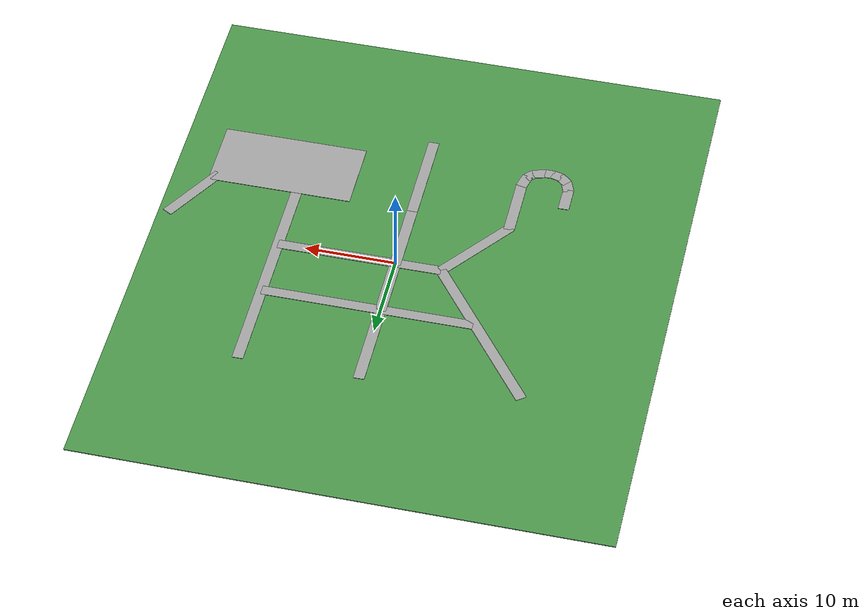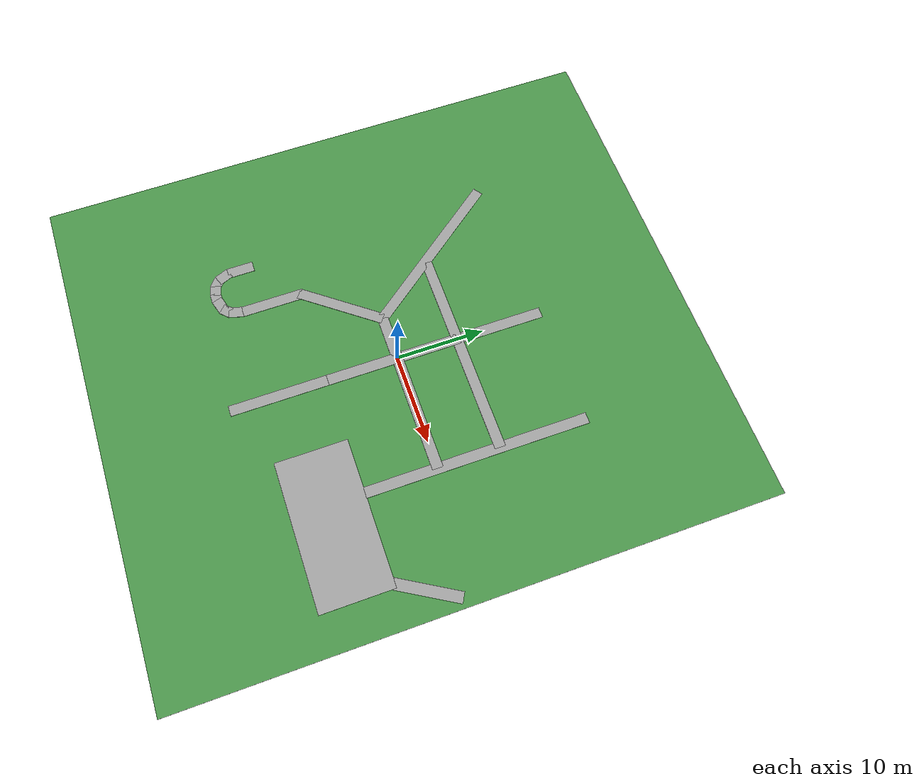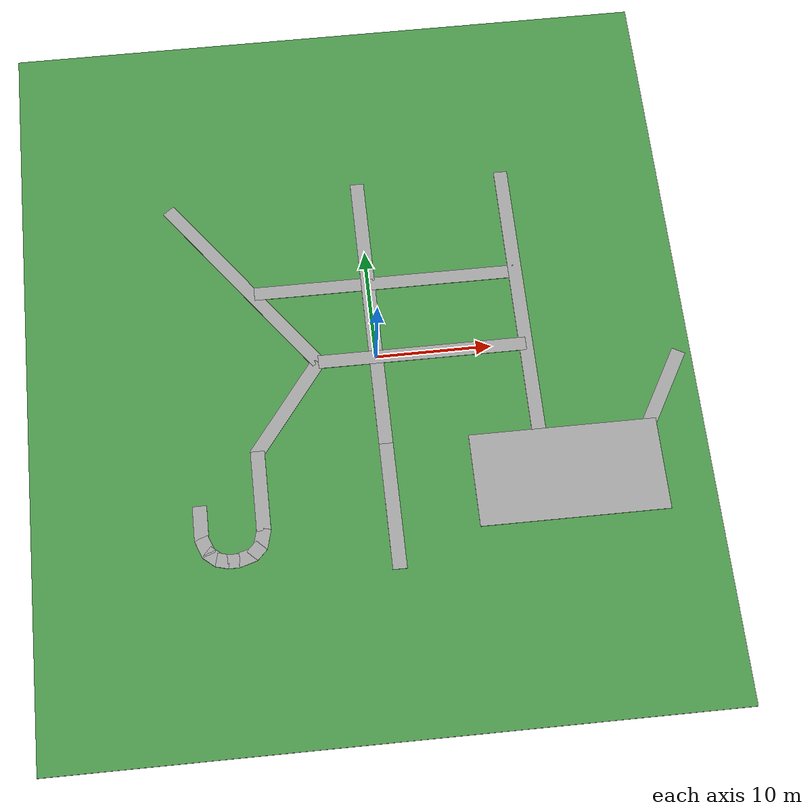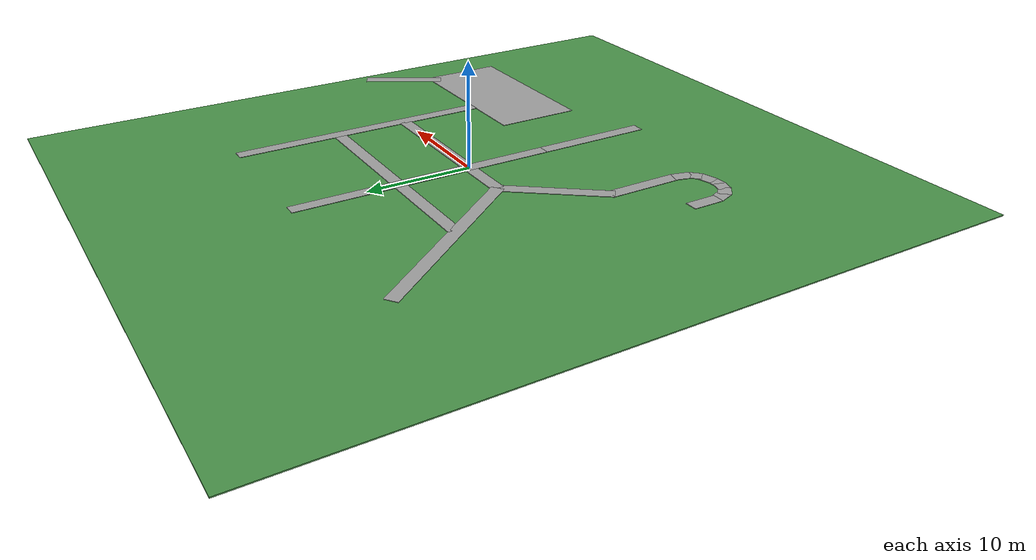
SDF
<?xml version="1.0" ?>
<sdf version="1.8">
  <world name="campus_sidewalk">

    <!-- 1. SIMULATION PHYSICS & SYSTEM PLUGINS     -->
    <physics name="1ms" type="ignored">
      <max_step_size>0.001</max_step_size>
      <real_time_factor>1.0</real_time_factor>
    </physics>

    <plugin filename="ignition-gazebo-physics-system" name="ignition::gazebo::systems::Physics"/>
    <plugin filename="ignition-gazebo-user-commands-system" name="ignition::gazebo::systems::UserCommands"/>
    <plugin filename="ignition-gazebo-scene-broadcaster-system" name="ignition::gazebo::systems::SceneBroadcaster"/>
    <plugin filename="ignition-gazebo-sensors-system" name="ignition::gazebo::systems::Sensors">
      <render_engine>ogre2</render_engine>
    </plugin>

    <!-- 2. LIGHTING & SUN                          -->
    <light type="directional" name="sun">
      <cast_shadows>true</cast_shadows>
      <pose>0 0 10 0 0 0</pose>
      <diffuse>0.8 0.8 0.8 1</diffuse>
      <specular>0.2 0.2 0.2 1</specular>
      <attenuation>
        <range>1000</range>
        <constant>0.9</constant>
        <linear>0.01</linear>
        <quadratic>0.001</quadratic>
      </attenuation>
      <direction>-0.5 0.1 -0.9</direction>
    </light>

    <!-- 3. GRASS MODEL                             -->
    <model name="grass_network">
      <static>true</static>

      <link name="grass_patch_0">
        <pose>-1.5000 0.0000 0.0 0 0 0</pose>
        <collision name="col">
          <pose>0 0 -0.0500 0 0 0</pose>
          <geometry>
            <box><size>57.0000 66.0000 0.1000</size></box>
          </geometry>
        </collision>
        <visual name="vis">
          <pose>0 0 -0.0500 0 0 0</pose>
          <geometry>
            <box><size>57.0000 66.0000 0.1000</size></box>
          </geometry>
          <material>
            <ambient>0.3 0.6 0.3 1</ambient>
            <diffuse>0.3 0.6 0.3 1</diffuse>
          </material>
          <plugin filename="ignition-gazebo-label-system" name="ignition::gazebo::systems::Label">
            <label>2</label> <!-- 2 = Grass -->
          </plugin>
        </visual>
      </link>
    </model>

    <!-- 4. SIDEWALK NETWORK                        -->
    <model name="sidewalk_network">
      <static>true</static>

      <!-- Segment 0: Length 25.00m, Width 1.20m, Height 0.05m -->
      <link name="segment_0">
        <pose>0.0000 -8.0000 0.0 0 0 1.5708</pose>
        <collision name="col">
          <pose>12.5000 0 0.0250 0 0 0</pose>
          <geometry>
            <box><size>25.0000 1.2000 0.0500</size></box>
          </geometry>
        </collision>
        <visual name="vis">
          <pose>12.5000 0 0.0250 0 0 0</pose>
          <geometry>
            <box><size>25.0000 1.2000 0.0500</size></box>
          </geometry>
          <material>
            <ambient>0.65 0.65 0.65 1</ambient>
            <diffuse>0.65 0.65 0.65 1</diffuse>
          </material>
          <plugin filename="ignition-gazebo-label-system" name="ignition::gazebo::systems::Label">
            <label>1</label> <!-- 1 = Sidewalk -->
          </plugin>
        </visual>
      </link>

      <!-- Segment 1: Length 18.00m, Width 1.20m, Height 0.05m -->
      <link name="segment_1">
        <pose>-5.0000 0.0000 0.0 0 0 0.0000</pose>
        <collision name="col">
          <pose>9.0000 0 0.0250 0 0 0</pose>
          <geometry>
            <box><size>18.0000 1.2000 0.0500</size></box>
          </geometry>
        </collision>
        <visual name="vis">
          <pose>9.0000 0 0.0250 0 0 0</pose>
          <geometry>
            <box><size>18.0000 1.2000 0.0500</size></box>
          </geometry>
          <material>
            <ambient>0.65 0.65 0.65 1</ambient>
            <diffuse>0.65 0.65 0.65 1</diffuse>
          </material>
          <plugin filename="ignition-gazebo-label-system" name="ignition::gazebo::systems::Label">
            <label>1</label> <!-- 1 = Sidewalk -->
          </plugin>
        </visual>
      </link>

      <!-- Segment 2: Length 10.00m, Width 1.20m, Height 0.05m -->
      <link name="segment_2">
        <pose>-5.0000 0.0000 0.0 0 0 -2.2143</pose>
        <collision name="col">
          <pose>5.0000 0 0.0250 0 0 0</pose>
          <geometry>
            <box><size>10.0000 1.2000 0.0500</size></box>
          </geometry>
        </collision>
        <visual name="vis">
          <pose>5.0000 0 0.0250 0 0 0</pose>
          <geometry>
            <box><size>10.0000 1.2000 0.0500</size></box>
          </geometry>
          <material>
            <ambient>0.65 0.65 0.65 1</ambient>
            <diffuse>0.65 0.65 0.65 1</diffuse>
          </material>
          <plugin filename="ignition-gazebo-label-system" name="ignition::gazebo::systems::Label">
            <label>1</label> <!-- 1 = Sidewalk -->
          </plugin>
        </visual>
      </link>

      <!-- Segment 3: Length 20.00m, Width 1.20m, Height 0.05m -->
      <link name="segment_3">
        <pose>-5.0000 0.0000 0.0 0 0 2.2143</pose>
        <collision name="col">
          <pose>10.0000 0 0.0250 0 0 0</pose>
          <geometry>
            <box><size>20.0000 1.2000 0.0500</size></box>
          </geometry>
        </collision>
        <visual name="vis">
          <pose>10.0000 0 0.0250 0 0 0</pose>
          <geometry>
            <box><size>20.0000 1.2000 0.0500</size></box>
          </geometry>
          <material>
            <ambient>0.65 0.65 0.65 1</ambient>
            <diffuse>0.65 0.65 0.65 1</diffuse>
          </material>
          <plugin filename="ignition-gazebo-label-system" name="ignition::gazebo::systems::Label">
            <label>1</label> <!-- 1 = Sidewalk -->
          </plugin>
        </visual>
      </link>

      <!-- Segment 4: Length 7.00m, Width 1.20m, Height 0.05m -->
      <link name="segment_4">
        <pose>-10.8433 -14.6439 0.0 0 0 1.5708</pose>
        <collision name="col">
          <pose>3.5000 0 0.0250 0 0 0</pose>
          <geometry>
            <box><size>7.0000 1.2000 0.0500</size></box>
          </geometry>
        </collision>
        <visual name="vis">
          <pose>3.5000 0 0.0250 0 0 0</pose>
          <geometry>
            <box><size>7.0000 1.2000 0.0500</size></box>
          </geometry>
          <material>
            <ambient>0.65 0.65 0.65 1</ambient>
            <diffuse>0.65 0.65 0.65 1</diffuse>
          </material>
          <plugin filename="ignition-gazebo-label-system" name="ignition::gazebo::systems::Label">
            <label>1</label> <!-- 1 = Sidewalk -->
          </plugin>
        </visual>
      </link>

      <!-- Segment 5: Length 23.00m, Width 1.20m, Height 0.05m -->
      <link name="segment_5">
        <pose>-10.0000 7.0000 0.0 0 0 0.0000</pose>
        <collision name="col">
          <pose>11.5000 0 0.0250 0 0 0</pose>
          <geometry>
            <box><size>23.0000 1.2000 0.0500</size></box>
          </geometry>
        </collision>
        <visual name="vis">
          <pose>11.5000 0 0.0250 0 0 0</pose>
          <geometry>
            <box><size>23.0000 1.2000 0.0500</size></box>
          </geometry>
          <material>
            <ambient>0.65 0.65 0.65 1</ambient>
            <diffuse>0.65 0.65 0.65 1</diffuse>
          </material>
          <plugin filename="ignition-gazebo-label-system" name="ignition::gazebo::systems::Label">
            <label>1</label> <!-- 1 = Sidewalk -->
          </plugin>
        </visual>
      </link>

      <!-- Segment 6: Length 11.00m, Width 1.20m, Height 0.05m -->
      <link name="segment_6">
        <pose>0.0000 -19.0000 0.0 0 0 1.5708</pose>
        <collision name="col">
          <pose>5.5000 0 0.0250 0 0 0</pose>
          <geometry>
            <box><size>11.0000 1.2000 0.0500</size></box>
          </geometry>
        </collision>
        <visual name="vis">
          <pose>5.5000 0 0.0250 0 0 0</pose>
          <geometry>
            <box><size>11.0000 1.2000 0.0500</size></box>
          </geometry>
          <material>
            <ambient>0.65 0.65 0.65 1</ambient>
            <diffuse>0.65 0.65 0.65 1</diffuse>
          </material>
          <plugin filename="ignition-gazebo-label-system" name="ignition::gazebo::systems::Label">
            <label>1</label> <!-- 1 = Sidewalk -->
          </plugin>
        </visual>
      </link>

      <!-- Segment 7: Length 25.00m, Width 1.20m, Height 0.05m -->
      <link name="segment_7">
        <pose>13.0000 -8.0000 0.0 0 0 1.5708</pose>
        <collision name="col">
          <pose>12.5000 0 0.0250 0 0 0</pose>
          <geometry>
            <box><size>25.0000 1.2000 0.0500</size></box>
          </geometry>
        </collision>
        <visual name="vis">
          <pose>12.5000 0 0.0250 0 0 0</pose>
          <geometry>
            <box><size>25.0000 1.2000 0.0500</size></box>
          </geometry>
          <material>
            <ambient>0.65 0.65 0.65 1</ambient>
            <diffuse>0.65 0.65 0.65 1</diffuse>
          </material>
          <plugin filename="ignition-gazebo-label-system" name="ignition::gazebo::systems::Label">
            <label>1</label> <!-- 1 = Sidewalk -->
          </plugin>
        </visual>
      </link>

      <!-- Segment 8: Length 1.75m, Width 1.20m, Height 0.05m -->
      <link name="segment_8">
        <pose>-10.8014 -14.4424 0.0 0 0 -1.8282</pose>
        <collision name="col">
          <pose>0.8739 0 0.0250 0 0 0</pose>
          <geometry>
            <box><size>1.7477 1.2000 0.0500</size></box>
          </geometry>
        </collision>
        <visual name="vis">
          <pose>0.8739 0 0.0250 0 0 0</pose>
          <geometry>
            <box><size>1.7477 1.2000 0.0500</size></box>
          </geometry>
          <material>
            <ambient>0.65 0.65 0.65 1</ambient>
            <diffuse>0.65 0.65 0.65 1</diffuse>
          </material>
          <plugin filename="ignition-gazebo-label-system" name="ignition::gazebo::systems::Label">
            <label>1</label> <!-- 1 = Sidewalk -->
          </plugin>
        </visual>
      </link>

      <!-- Segment 9: Length 1.21m, Width 1.20m, Height 0.05m -->
      <link name="segment_9">
        <pose>-11.0945 -15.8603 0.0 0 0 -2.3440</pose>
        <collision name="col">
          <pose>0.6068 0 0.0250 0 0 0</pose>
          <geometry>
            <box><size>1.2136 1.2000 0.0500</size></box>
          </geometry>
        </collision>
        <visual name="vis">
          <pose>0.6068 0 0.0250 0 0 0</pose>
          <geometry>
            <box><size>1.2136 1.2000 0.0500</size></box>
          </geometry>
          <material>
            <ambient>0.65 0.65 0.65 1</ambient>
            <diffuse>0.65 0.65 0.65 1</diffuse>
          </material>
          <plugin filename="ignition-gazebo-label-system" name="ignition::gazebo::systems::Label">
            <label>1</label> <!-- 1 = Sidewalk -->
          </plugin>
        </visual>
      </link>

      <!-- Segment 10: Length 1.00m, Width 1.20m, Height 0.05m -->
      <link name="segment_10">
        <pose>-13.0000 -17.0000 0.0 0 0 3.1416</pose>
        <collision name="col">
          <pose>0.5000 0 0.0250 0 0 0</pose>
          <geometry>
            <box><size>1.0000 1.2000 0.0500</size></box>
          </geometry>
        </collision>
        <visual name="vis">
          <pose>0.5000 0 0.0250 0 0 0</pose>
          <geometry>
            <box><size>1.0000 1.2000 0.0500</size></box>
          </geometry>
          <material>
            <ambient>0.65 0.65 0.65 1</ambient>
            <diffuse>0.65 0.65 0.65 1</diffuse>
          </material>
          <plugin filename="ignition-gazebo-label-system" name="ignition::gazebo::systems::Label">
            <label>1</label> <!-- 1 = Sidewalk -->
          </plugin>
        </visual>
      </link>

      <!-- Segment 11: Length 1.33m, Width 1.20m, Height 0.05m -->
      <link name="segment_11">
        <pose>-15.6686 -16.0029 0.0 0 0 -0.7102</pose>
        <collision name="col">
          <pose>0.6637 0 0.0250 0 0 0</pose>
          <geometry>
            <box><size>1.3274 1.2000 0.0500</size></box>
          </geometry>
        </collision>
        <visual name="vis">
          <pose>0.6637 0 0.0250 0 0 0</pose>
          <geometry>
            <box><size>1.3274 1.2000 0.0500</size></box>
          </geometry>
          <material>
            <ambient>0.65 0.65 0.65 1</ambient>
            <diffuse>0.65 0.65 0.65 1</diffuse>
          </material>
          <plugin filename="ignition-gazebo-label-system" name="ignition::gazebo::systems::Label">
            <label>1</label> <!-- 1 = Sidewalk -->
          </plugin>
        </visual>
      </link>

      <!-- Segment 12: Length 1.59m, Width 1.20m, Height 0.05m -->
      <link name="segment_12">
        <pose>-15.4727 -16.2787 0.0 0 0 1.9345</pose>
        <collision name="col">
          <pose>0.7951 0 0.0250 0 0 0</pose>
          <geometry>
            <box><size>1.5902 1.2000 0.0500</size></box>
          </geometry>
        </collision>
        <visual name="vis">
          <pose>0.7951 0 0.0250 0 0 0</pose>
          <geometry>
            <box><size>1.5902 1.2000 0.0500</size></box>
          </geometry>
          <material>
            <ambient>0.65 0.65 0.65 1</ambient>
            <diffuse>0.65 0.65 0.65 1</diffuse>
          </material>
          <plugin filename="ignition-gazebo-label-system" name="ignition::gazebo::systems::Label">
            <label>1</label> <!-- 1 = Sidewalk -->
          </plugin>
        </visual>
      </link>

      <!-- Segment 13: Length 3.00m, Width 1.20m, Height 0.05m -->
      <link name="segment_13">
        <pose>-16.0000 -15.0000 0.0 0 0 1.5708</pose>
        <collision name="col">
          <pose>1.5000 0 0.0250 0 0 0</pose>
          <geometry>
            <box><size>3.0000 1.2000 0.0500</size></box>
          </geometry>
        </collision>
        <visual name="vis">
          <pose>1.5000 0 0.0250 0 0 0</pose>
          <geometry>
            <box><size>3.0000 1.2000 0.0500</size></box>
          </geometry>
          <material>
            <ambient>0.65 0.65 0.65 1</ambient>
            <diffuse>0.65 0.65 0.65 1</diffuse>
          </material>
          <plugin filename="ignition-gazebo-label-system" name="ignition::gazebo::systems::Label">
            <label>1</label> <!-- 1 = Sidewalk -->
          </plugin>
        </visual>
      </link>

      <!-- Segment 14: Length 16.00m, Width 8.10m, Height 0.05m -->
      <link name="segment_14">
        <pose>7.0000 -12.0000 0.0 0 0 0.0000</pose>
        <collision name="col">
          <pose>8.0000 0 0.0250 0 0 0</pose>
          <geometry>
            <box><size>16.0000 8.1000 0.0500</size></box>
          </geometry>
        </collision>
        <visual name="vis">
          <pose>8.0000 0 0.0250 0 0 0</pose>
          <geometry>
            <box><size>16.0000 8.1000 0.0500</size></box>
          </geometry>
          <material>
            <ambient>0.65 0.65 0.65 1</ambient>
            <diffuse>0.65 0.65 0.65 1</diffuse>
          </material>
          <plugin filename="ignition-gazebo-label-system" name="ignition::gazebo::systems::Label">
            <label>1</label> <!-- 1 = Sidewalk -->
          </plugin>
        </visual>
      </link>

      <!-- Segment 15: Length 8.06m, Width 1.20m, Height 0.05m -->
      <link name="segment_15">
        <pose>22.0000 -9.0000 0.0 0 0 1.0517</pose>
        <collision name="col">
          <pose>4.0312 0 0.0250 0 0 0</pose>
          <geometry>
            <box><size>8.0623 1.2000 0.0500</size></box>
          </geometry>
        </collision>
        <visual name="vis">
          <pose>4.0312 0 0.0250 0 0 0</pose>
          <geometry>
            <box><size>8.0623 1.2000 0.0500</size></box>
          </geometry>
          <material>
            <ambient>0.65 0.65 0.65 1</ambient>
            <diffuse>0.65 0.65 0.65 1</diffuse>
          </material>
          <plugin filename="ignition-gazebo-label-system" name="ignition::gazebo::systems::Label">
            <label>1</label> <!-- 1 = Sidewalk -->
          </plugin>
        </visual>
      </link>

      <!-- Segment 16: Length 1.58m, Width 1.22m, Height 0.05m -->
      <link name="segment_16">
        <pose>-11.6855 -16.5632 0.0 0 0 -2.8495</pose>
        <collision name="col">
          <pose>0.7896 0 0.0250 0 0 0</pose>
          <geometry>
            <box><size>1.5793 1.2200 0.0500</size></box>
          </geometry>
        </collision>
        <visual name="vis">
          <pose>0.7896 0 0.0250 0 0 0</pose>
          <geometry>
            <box><size>1.5793 1.2200 0.0500</size></box>
          </geometry>
          <material>
            <ambient>0.65 0.65 0.65 1</ambient>
            <diffuse>0.65 0.65 0.65 1</diffuse>
          </material>
          <plugin filename="ignition-gazebo-label-system" name="ignition::gazebo::systems::Label">
            <label>1</label> <!-- 1 = Sidewalk -->
          </plugin>
        </visual>
      </link>

      <!-- Segment 17: Length 1.11m, Width 1.20m, Height 0.05m -->
      <link name="segment_17">
        <pose>-14.8953 -16.7384 0.0 0 0 -0.2626</pose>
        <collision name="col">
          <pose>0.5560 0 0.0250 0 0 0</pose>
          <geometry>
            <box><size>1.1121 1.2000 0.0500</size></box>
          </geometry>
        </collision>
        <visual name="vis">
          <pose>0.5560 0 0.0250 0 0 0</pose>
          <geometry>
            <box><size>1.1121 1.2000 0.0500</size></box>
          </geometry>
          <material>
            <ambient>0.65 0.65 0.65 1</ambient>
            <diffuse>0.65 0.65 0.65 1</diffuse>
          </material>
          <plugin filename="ignition-gazebo-label-system" name="ignition::gazebo::systems::Label">
            <label>1</label> <!-- 1 = Sidewalk -->
          </plugin>
        </visual>
      </link>
    </model>

    <!-- 5. PREDEFINED SPAWN POINTS                 -->
    <!-- Waypoint: sp_1 -->
    <frame name="sp_1">
      <pose>-0.0000 -8.0000 0.1000 0.0000 0.0000 1.5708</pose>
    </frame>

    <!-- Waypoint: wp_plaza_exit_1 -->
    <frame name="wp_plaza_exit_1">
      <pose>13.0000 -8.0000 0.1000 0.0000 0.0000 1.5708</pose>
    </frame>

    <!-- Waypoint: wp_slant_split_1 -->
    <frame name="wp_slant_split_1">
      <pose>-10.1000 6.8000 0.1000 0.0000 0.0000 2.2143</pose>
    </frame>

    <!-- Waypoint: wp_crossway_1 -->
    <frame name="wp_crossway_1">
      <pose>0.0000 0.0000 0.1000 0.0000 0.0000 3.1416</pose>
    </frame>

    <!-- Waypoint: wp_crossway_2 -->
    <frame name="wp_crossway_2">
      <pose>-0.0000 7.0000 0.1000 0.0000 0.0000 3.1353</pose>
    </frame>

    <!-- Waypoint: wp_crossway_4 -->
    <frame name="wp_crossway_4">
      <pose>13.0000 -0.0000 0.1000 0.0000 0.0000 1.5708</pose>
    </frame>

    <!-- Waypoint: wp_end_1 -->
    <frame name="wp_end_1">
      <pose>-16.0332 -12.5729 0.1000 0.0000 0.0000 1.5708</pose>
    </frame>

    <!-- Waypoint: wp_y_split_1 -->
    <frame name="wp_y_split_1">
      <pose>-5.0000 0.0000 0.1000 0.0000 0.0000 2.2143</pose>
    </frame>

    <!-- Waypoint: sp_plaza -->
    <frame name="sp_plaza">
      <pose>13.0800 -15.3600 0.1000 0.0000 0.0000 1.0552</pose>
    </frame>

    <!-- Waypoint: wp_plaza_exit_2 -->
    <frame name="wp_plaza_exit_2">
      <pose>22.5000 -8.1300 0.1000 0.0000 0.0000 1.0517</pose>
    </frame>

    <!-- Waypoint: wp_crossway_3 -->
    <frame name="wp_crossway_3">
      <pose>13.0000 7.0000 0.1000 0.0000 0.0000 1.5708</pose>
    </frame>

    <!-- Waypoint: wp_end_2 -->
    <frame name="wp_end_2">
      <pose>-16.4000 15.2000 0.1000 0.0000 0.0000 2.2143</pose>
    </frame>

    <!-- Waypoint: wp_end_3 -->
    <frame name="wp_end_3">
      <pose>-0.0000 16.0000 0.1000 0.0000 0.0000 1.5708</pose>
    </frame>

    <!-- Waypoint: wp_end_4 -->
    <frame name="wp_end_4">
      <pose>13.0000 16.0000 0.1000 0.0000 0.0000 1.5708</pose>
    </frame>

    <!-- Waypoint: wp_curve_1 -->
    <frame name="wp_curve_1">
      <pose>-10.8500 -13.8300 0.1000 0.0000 0.0000 0.0000</pose>
    </frame>

    <!-- Waypoint: wp_curve_2 -->
    <frame name="wp_curve_2">
      <pose>-13.5700 -17.0000 0.1000 0.0000 0.0000 0.0000</pose>
    </frame>

    <!-- Waypoint: wp_end_5 -->
    <frame name="wp_end_5">
      <pose>-0.0000 -18.5000 0.1000 0.0000 0.0000 1.5708</pose>
    </frame>

    <!-- Waypoint: wp_end_6 -->
    <frame name="wp_end_6">
      <pose>25.7200 -2.4900 0.1000 0.0000 0.0000 1.0517</pose>
    </frame>

    <!-- Waypoint: wp_bend_1 -->
    <frame name="wp_bend_1">
      <pose>-10.7000 -7.6000 0.1000 0.0000 0.0000 -2.2143</pose>
    </frame>

  </world>
</sdf>
